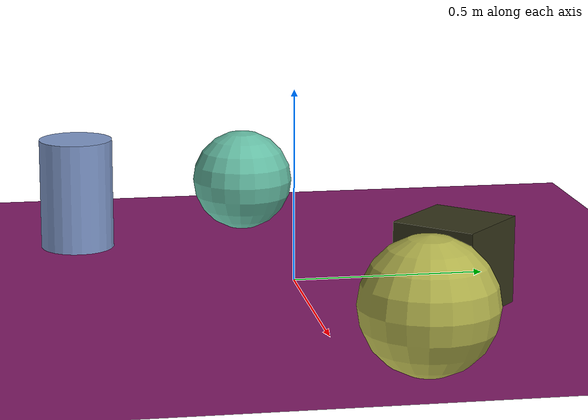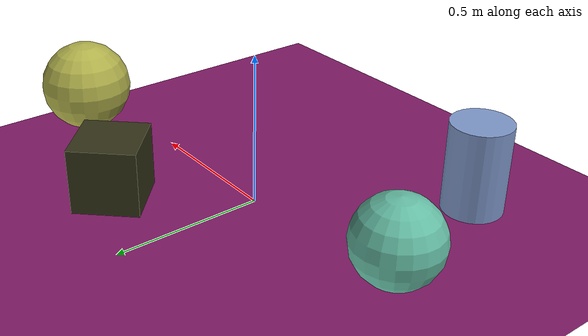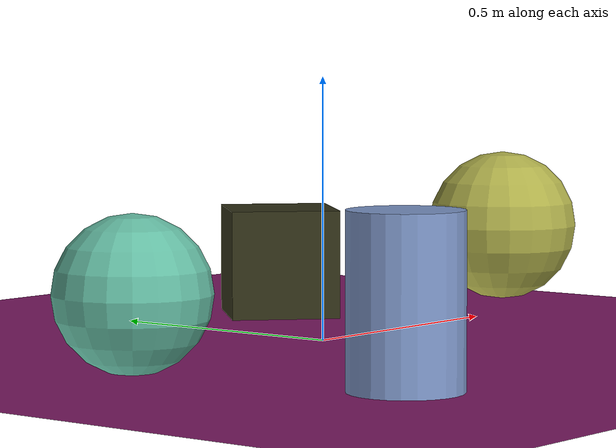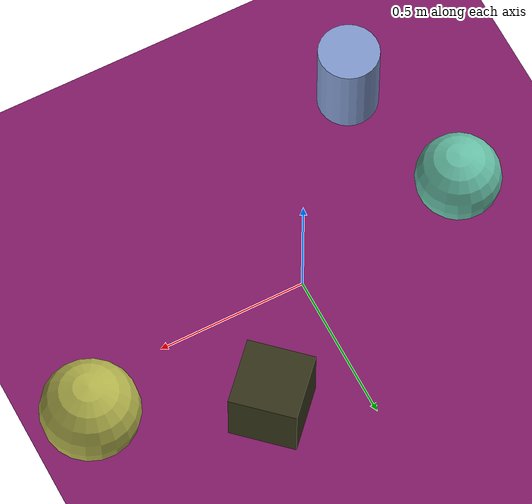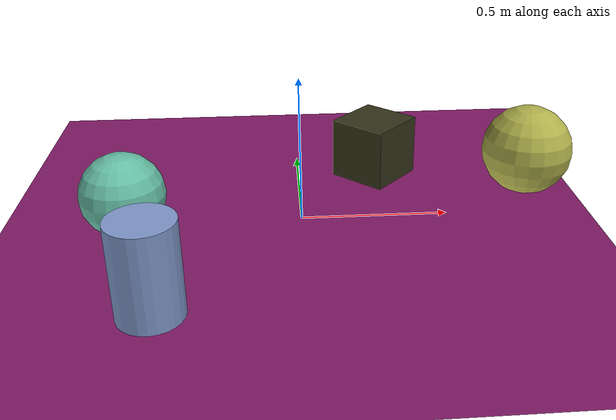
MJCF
<mujoco>
   <asset>
<texture type="skybox" builtin="gradient" rgb1="0.3 0.6 0.4" rgb2="0.5 0.7 0.5" width="500" height="500"/>
<texture name="flat_0" builtin="flat" rgb1="0.2 0.2 0.1" rgb2="0.2 0.2 0.1"  width="500" height="500"/>
<texture name="checker_1" builtin="checker" rgb1="0.3 0.9 0.8" rgb2="0.5 0.6 0.5" width="500" height="500"/>
<texture name="flat_2" builtin="flat" rgb1="0.5 0.6 0.8" rgb2="0.5 0.6 0.8"  width="500" height="500"/>
<texture name="flat_3" builtin="flat" rgb1="0.7 0.7 0.3" rgb2="0.7 0.7 0.3"  width="500" height="500"/><material name="flat_0_mat" reflectance="0.4620801090237756" texture="flat_0" texuniform="true"/>
<material name="checker_1_mat" reflectance="0.8270834422360207" texrepeat="4 4" texture="checker_1" texuniform="false" />
<material name="flat_2_mat" reflectance="0.6157919414043591" texture="flat_2" texuniform="true"/>
<material name="flat_3_mat" reflectance="0.21457936798503663" texture="flat_3" texuniform="true"/>
   </asset>

   <worldbody>
     <geom type="plane" size="1 1 0.1" rgba="0.5 0.1 0.4 1" />
<light pos="0.13979616993313626 -0.8660896972051664 2" dir="0 0 -1" cutoff="90" diffuse="1 1 1" specular="1 1 1"/>
<light pos="0.9154805384162485 -0.5256124568177714 2" dir="0 0 -1" cutoff="90" diffuse="1 1 1" specular="1 1 1"/>
<geom type="box" pos="0.29 0.35 0.11" size="0.11 0.11 0.11" material="flat_0_mat" euler="0 0 47" />
<geom type="sphere" pos="-0.58 -0.05 0.14" size="0.14 0.14 0.14" material="checker_1_mat" euler="0 0 7" />
<geom type="cylinder" pos="-0.44 -0.53 0.15" size="0.1 0.15 0.15" material="flat_2_mat" euler="0 0 33" />
<geom type="sphere" pos="0.82 0.16 0.16" size="0.16 0.16 0.16" material="flat_3_mat" euler="0 0 59" /><camera euler="60 0 180" fovy="60" name="camera2" pos="0.2 -1.5 1"></camera>   </worldbody>
   <visual>
      <headlight diffuse="0.7 0.7 0.7"/>
   </visual>
</mujoco>
